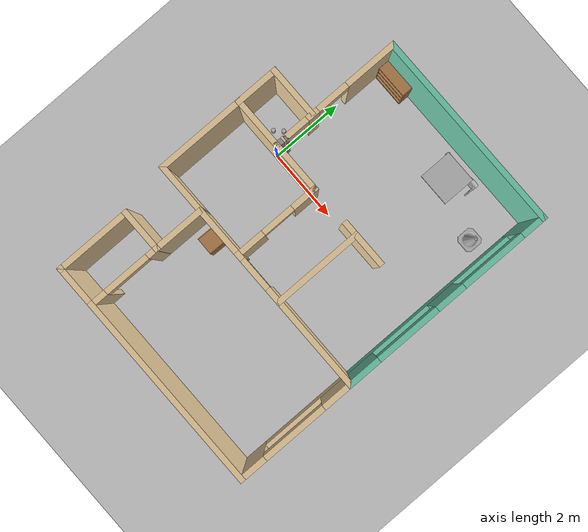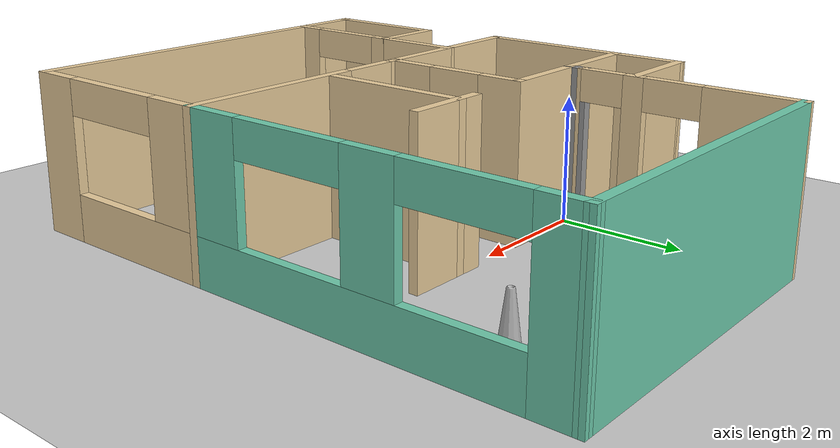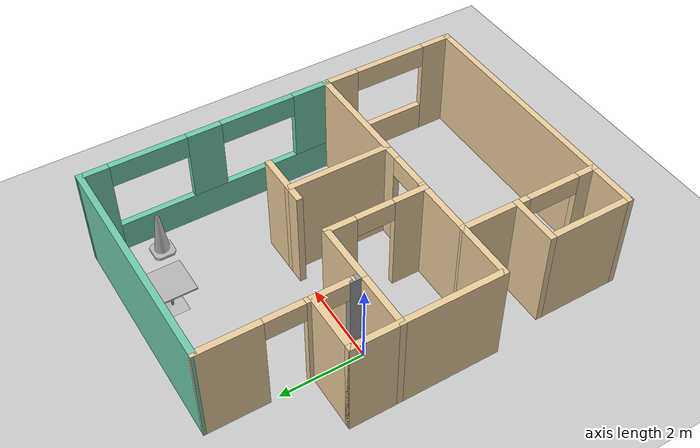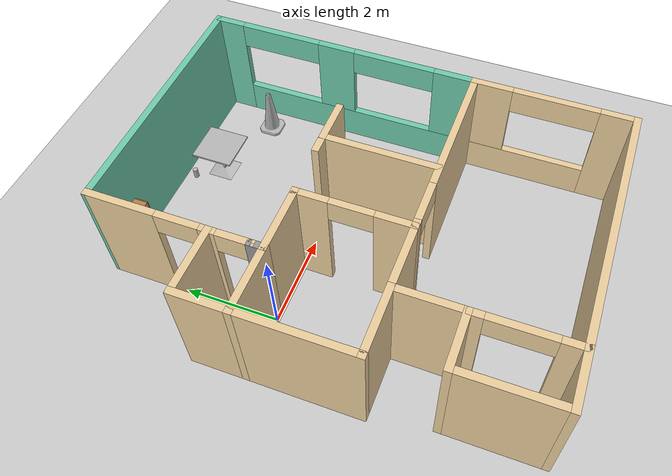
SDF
<sdf version="1.6">
 <world name="default">
  <model name="ground_plane">
   <static>1</static>
   <link name="link">
    <collision name="collision">
     <geometry><plane><normal>0 0 1</normal><size>100 100</size></plane></geometry>
     <surface>
      <contact><collide_bitmask>65535</collide_bitmask></contact>
      <friction><ode><mu>100</mu><mu2>50</mu2></ode></friction>
     </surface>
    </collision>
    <visual name="visual">
     <cast_shadows>0</cast_shadows>
     <geometry><plane><normal>0 0 1</normal><size>100 100</size></plane></geometry>
     <material>
      <script><uri>file://media/materials/scripts/gazebo.material</uri><name>Gazebo/Grey</name></script>
     </material>
    </visual>
   </link>
  </model>
  <model name="combined_model">
   <model name="apt_1br">
    <pose>0.440605 -1.37151 0 0 -0 0</pose>
    <link name="Wall_10">
     <collision name="Wall_10_Collision">
      <geometry><box><size>5.5 0.15 2.5</size></box></geometry>
      <pose>0 0 1.25 0 -0 0</pose>
     </collision>
     <visual name="Wall_10_Visual">
      <pose>0 0 1.25 0 -0 0</pose>
      <geometry><box><size>5.5 0.15 2.5</size></box></geometry>
      <material>
       <script><uri>file://media/materials/scripts/gazebo.material</uri><name>Gazebo/Grey</name></script>
       <ambient>0.921569 0.807843 0.615686 1</ambient>
      </material>
      <meta><layer>0</layer></meta>
     </visual>
     <pose>0.674919 -4.65002 0 0 -0 3.14159</pose>
    </link>
    <link name="Wall_21">
     <collision name="Wall_21_Collision">
      <geometry><box><size>1.5 0.15 2.5</size></box></geometry>
      <pose>0 0 1.25 0 -0 0</pose>
     </collision>
     <visual name="Wall_21_Visual">
      <pose>0 0 1.25 0 -0 0</pose>
      <geometry><box><size>1.5 0.15 2.5</size></box></geometry>
      <material>
       <script><uri>file://media/materials/scripts/gazebo.material</uri><name>Gazebo/Grey</name></script>
       <ambient>0.921569 0.807843 0.615686 1</ambient>
      </material>
      <meta><layer>0</layer></meta>
     </visual>
     <pose>-1.32508 1.04998 0 0 -0 3.14159</pose>
    </link>
    <link name="Wall_29">
     <pose>3.34992 1.67498 0 0 -0 -1.5708</pose>
     <visual name="Wall_29_Visual_0">
      <pose>-2.69448 0 1.25 0 -0 0</pose>
      <geometry><box><size>0.71105 0.15 2.5</size></box></geometry>
      <material>
       <script><uri>file://media/materials/scripts/gazebo.material</uri><name>Gazebo/Grey</name></script>
       <ambient>0.435294 0.796078 0.67451 1</ambient>
      </material>
      <meta><layer>0</layer></meta>
     </visual>
     <collision name="Wall_29_Collision_0">
      <geometry><box><size>0.71105 0.15 2.5</size></box></geometry>
      <pose>-2.69448 0 1.25 0 -0 0</pose>
     </collision>
     <visual name="Wall_29_Visual_1">
      <pose>0.355525 0 0.375 0 -0 0</pose>
      <geometry><box><size>5.38895 0.15 0.75</size></box></geometry>
      <material>
       <script><uri>file://media/materials/scripts/gazebo.material</uri><name>Gazebo/Grey</name></script>
       <ambient>0.435294 0.796078 0.67451 1</ambient>
      </material>
      <meta><layer>0</layer></meta>
     </visual>
     <collision name="Wall_29_Collision_1">
      <geometry><box><size>5.38895 0.15 0.75</size></box></geometry>
      <pose>0.355525 0 0.375 0 -0 0</pose>
     </collision>
     <visual name="Wall_29_Visual_2">
      <pose>-0.124805 0 1.625 0 -0 0</pose>
      <geometry><box><size>0.82829 0.15 1.75</size></box></geometry>
      <material>
       <script><uri>file://media/materials/scripts/gazebo.material</uri><name>Gazebo/Grey</name></script>
       <ambient>0.435294 0.796078 0.67451 1</ambient>
      </material>
      <meta><layer>0</layer></meta>
     </visual>
     <collision name="Wall_29_Collision_2">
      <geometry><box><size>0.82829 0.15 1.75</size></box></geometry>
      <pose>-0.124805 0 1.625 0 -0 0</pose>
     </collision>
     <visual name="Wall_29_Visual_3">
      <pose>2.56967 0 1.625 0 -0 0</pose>
      <geometry><box><size>0.96066 0.15 1.75</size></box></geometry>
      <material>
       <script><uri>file://media/materials/scripts/gazebo.material</uri><name>Gazebo/Grey</name></script>
       <ambient>0.435294 0.796078 0.67451 1</ambient>
      </material>
      <meta><layer>0</layer></meta>
     </visual>
     <collision name="Wall_29_Collision_3">
      <geometry><box><size>0.96066 0.15 1.75</size></box></geometry>
      <pose>2.56967 0 1.625 0 -0 0</pose>
     </collision>
     <visual name="Wall_29_Visual_4">
      <pose>-1.43895 0 2.225 0 -0 0</pose>
      <geometry><box><size>1.8 0.15 0.55</size></box></geometry>
      <material>
       <script><uri>file://media/materials/scripts/gazebo.material</uri><name>Gazebo/Grey</name></script>
       <ambient>0.435294 0.796078 0.67451 1</ambient>
      </material>
      <meta><layer>0</layer></meta>
     </visual>
     <collision name="Wall_29_Collision_4">
      <geometry><box><size>1.8 0.15 0.55</size></box></geometry>
      <pose>-1.43895 0 2.225 0 -0 0</pose>
     </collision>
     <visual name="Wall_29_Visual_5">
      <pose>1.18934 0 2.225 0 -0 0</pose>
      <geometry><box><size>1.8 0.15 0.55</size></box></geometry>
      <material>
       <script><uri>file://media/materials/scripts/gazebo.material</uri><name>Gazebo/Grey</name></script>
       <ambient>0.435294 0.796078 0.67451 1</ambient>
      </material>
      <meta><layer>0</layer></meta>
     </visual>
     <collision name="Wall_29_Collision_5">
      <geometry><box><size>1.8 0.15 0.55</size></box></geometry>
      <pose>1.18934 0 2.225 0 -0 0</pose>
     </collision>
    </link>
    <link name="Wall_31">
     <pose>3.34992 -2.97502 0 0 -0 1.5708</pose>
     <visual name="Wall_31_Visual_0">
      <pose>-1.34686 0 1.25 0 -0 0</pose>
      <geometry><box><size>0.806273 0.15 2.5</size></box></geometry>
      <material>
       <script><uri>file://media/materials/scripts/gazebo.material</uri><name>Gazebo/Grey</name></script>
       <ambient>0.921569 0.807843 0.615686 1</ambient>
      </material>
      <meta><layer>0</layer></meta>
     </visual>
     <collision name="Wall_31_Collision_0">
      <geometry><box><size>0.806273 0.15 2.5</size></box></geometry>
      <pose>-1.34686 0 1.25 0 -0 0</pose>
     </collision>
     <visual name="Wall_31_Visual_1">
      <pose>0.403136 0 0.375 0 -0 0</pose>
      <geometry><box><size>2.69373 0.15 0.75</size></box></geometry>
      <material>
       <script><uri>file://media/materials/scripts/gazebo.material</uri><name>Gazebo/Grey</name></script>
       <ambient>0.921569 0.807843 0.615686 1</ambient>
      </material>
      <meta><layer>0</layer></meta>
     </visual>
     <collision name="Wall_31_Collision_1">
      <geometry><box><size>2.69373 0.15 0.75</size></box></geometry>
      <pose>0.403136 0 0.375 0 -0 0</pose>
     </collision>
     <visual name="Wall_31_Visual_2">
      <pose>1.30314 0 1.625 0 -0 0</pose>
      <geometry><box><size>0.893727 0.15 1.75</size></box></geometry>
      <material>
       <script><uri>file://media/materials/scripts/gazebo.material</uri><name>Gazebo/Grey</name></script>
       <ambient>0.921569 0.807843 0.615686 1</ambient>
      </material>
      <meta><layer>0</layer></meta>
     </visual>
     <collision name="Wall_31_Collision_2">
      <geometry><box><size>0.893727 0.15 1.75</size></box></geometry>
      <pose>1.30314 0 1.625 0 -0 0</pose>
     </collision>
     <visual name="Wall_31_Visual_3">
      <pose>-0.043727 0 2.225 0 -0 0</pose>
      <geometry><box><size>1.8 0.15 0.55</size></box></geometry>
      <material>
       <script><uri>file://media/materials/scripts/gazebo.material</uri><name>Gazebo/Grey</name></script>
       <ambient>0.921569 0.807843 0.615686 1</ambient>
      </material>
      <meta><layer>0</layer></meta>
     </visual>
     <collision name="Wall_31_Collision_3">
      <geometry><box><size>1.8 0.15 0.55</size></box></geometry>
      <pose>-0.043727 0 2.225 0 -0 0</pose>
     </collision>
    </link>
    <link name="Wall_33">
     <pose>-0.650081 -0.125024 0 0 -0 -1.5708</pose>
     <visual name="Wall_33_Visual_0">
      <pose>-0.874194 0 1.25 0 -0 0</pose>
      <geometry><box><size>0.751611 0.15 2.5</size></box></geometry>
      <material>
       <script><uri>file://media/materials/scripts/gazebo.material</uri><name>Gazebo/Grey</name></script>
       <ambient>0.921569 0.807843 0.615686 1</ambient>
      </material>
      <meta><layer>0</layer></meta>
     </visual>
     <collision name="Wall_33_Collision_0">
      <geometry><box><size>0.751611 0.15 2.5</size></box></geometry>
      <pose>-0.874194 0 1.25 0 -0 0</pose>
     </collision>
     <visual name="Wall_33_Visual_1">
      <pose>0.825806 0 1.25 0 -0 0</pose>
      <geometry><box><size>0.848389 0.15 2.5</size></box></geometry>
      <material>
       <script><uri>file://media/materials/scripts/gazebo.material</uri><name>Gazebo/Grey</name></script>
       <ambient>0.921569 0.807843 0.615686 1</ambient>
      </material>
      <meta><layer>0</layer></meta>
     </visual>
     <collision name="Wall_33_Collision_1">
      <geometry><box><size>0.848389 0.15 2.5</size></box></geometry>
      <pose>0.825806 0 1.25 0 -0 0</pose>
     </collision>
     <visual name="Wall_33_Visual_2">
      <pose>-0.048389 0 2.25 0 -0 0</pose>
      <geometry><box><size>0.9 0.15 0.5</size></box></geometry>
      <material>
       <script><uri>file://media/materials/scripts/gazebo.material</uri><name>Gazebo/Grey</name></script>
       <ambient>0.921569 0.807843 0.615686 1</ambient>
      </material>
      <meta><layer>0</layer></meta>
     </visual>
     <collision name="Wall_33_Collision_2">
      <geometry><box><size>0.9 0.15 0.5</size></box></geometry>
      <pose>-0.048389 0 2.25 0 -0 0</pose>
     </collision>
    </link>
    <link name="Wall_34">
     <collision name="Wall_34_Collision">
      <geometry><box><size>1.5 0.15 2.5</size></box></geometry>
      <pose>0 0 1.25 0 -0 0</pose>
     </collision>
     <visual name="Wall_34_Visual">
      <pose>0 0 1.25 0 -0 0</pose>
      <geometry><box><size>1.5 0.15 2.5</size></box></geometry>
      <material>
       <script><uri>file://media/materials/scripts/gazebo.material</uri><name>Gazebo/Grey</name></script>
       <ambient>0.921569 0.807843 0.615686 1</ambient>
      </material>
      <meta><layer>0</layer></meta>
     </visual>
     <pose>-1.32508 -1.30002 0 0 -0 3.14159</pose>
    </link>
    <link name="Wall_36">
     <pose>1.34992 -1.30002 0 0 -0 0</pose>
     <visual name="Wall_36_Visual_0">
      <pose>-1.96133 0 1.25 0 -0 0</pose>
      <geometry><box><size>0.227341 0.15 2.5</size></box></geometry>
      <material>
       <script><uri>file://media/materials/scripts/gazebo.material</uri><name>Gazebo/Grey</name></script>
       <ambient>0.921569 0.807843 0.615686 1</ambient>
      </material>
      <meta><layer>0</layer></meta>
     </visual>
     <collision name="Wall_36_Collision_0">
      <geometry><box><size>0.227341 0.15 2.5</size></box></geometry>
      <pose>-1.96133 0 1.25 0 -0 0</pose>
     </collision>
     <visual name="Wall_36_Visual_1">
      <pose>0.56367 0 1.25 0 -0 0</pose>
      <geometry><box><size>3.02266 0.15 2.5</size></box></geometry>
      <material>
       <script><uri>file://media/materials/scripts/gazebo.material</uri><name>Gazebo/Grey</name></script>
       <ambient>0.921569 0.807843 0.615686 1</ambient>
      </material>
      <meta><layer>0</layer></meta>
     </visual>
     <collision name="Wall_36_Collision_1">
      <geometry><box><size>3.02266 0.15 2.5</size></box></geometry>
      <pose>0.56367 0 1.25 0 -0 0</pose>
     </collision>
     <visual name="Wall_36_Visual_2">
      <pose>-1.39766 0 2.25 0 -0 0</pose>
      <geometry><box><size>0.9 0.15 0.5</size></box></geometry>
      <material>
       <script><uri>file://media/materials/scripts/gazebo.material</uri><name>Gazebo/Grey</name></script>
       <ambient>0.921569 0.807843 0.615686 1</ambient>
      </material>
      <meta><layer>0</layer></meta>
     </visual>
     <collision name="Wall_36_Collision_2">
      <geometry><box><size>0.9 0.15 0.5</size></box></geometry>
      <pose>-1.39766 0 2.25 0 -0 0</pose>
     </collision>
    </link>
    <link name="Wall_38">
     <collision name="Wall_38_Collision">
      <geometry><box><size>2.5 0.15 2.5</size></box></geometry>
      <pose>0 0 1.25 0 -0 0</pose>
     </collision>
     <visual name="Wall_38_Visual">
      <pose>0 0 1.25 0 -0 0</pose>
      <geometry><box><size>2.5 0.15 2.5</size></box></geometry>
      <material>
       <script><uri>file://media/materials/scripts/gazebo.material</uri><name>Gazebo/Grey</name></script>
       <ambient>0.921569 0.807843 0.615686 1</ambient>
      </material>
      <meta><layer>0</layer></meta>
     </visual>
     <pose>0.806186 -0.096149 0 0 -0 1.5708</pose>
    </link>
    <link name="Wall_41">
     <collision name="Wall_41_Collision">
      <geometry><box><size>1 0.15 2.5</size></box></geometry>
      <pose>0 0 1.25 0 -0 0</pose>
     </collision>
     <visual name="Wall_41_Visual">
      <pose>0 0 1.25 0 -0 0</pose>
      <geometry><box><size>1 0.15 2.5</size></box></geometry>
      <material>
       <script><uri>file://media/materials/scripts/gazebo.material</uri><name>Gazebo/Grey</name></script>
       <ambient>0.921569 0.807843 0.615686 1</ambient>
      </material>
      <meta><layer>0</layer></meta>
     </visual>
     <pose>1.23119 1.07885 0 0 -0 0</pose>
    </link>
    <link name="Wall_43">
     <collision name="Wall_43_Collision">
      <geometry><box><size>0.5 0.15 2.5</size></box></geometry>
      <pose>0 0 1.25 0 -0 0</pose>
     </collision>
     <visual name="Wall_43_Visual">
      <pose>0 0 1.25 0 -0 0</pose>
      <geometry><box><size>0.5 0.15 2.5</size></box></geometry>
      <material>
       <script><uri>file://media/materials/scripts/gazebo.material</uri><name>Gazebo/Grey</name></script>
       <ambient>0.921569 0.807843 0.615686 1</ambient>
      </material>
      <meta><layer>0</layer></meta>
     </visual>
     <pose>0.631186 1.07885 0 0 -0 3.14159</pose>
    </link>
    <link name="Wall_5">
     <pose>-2.00008 2.96898 0 0 -0 1.5708</pose>
     <visual name="Wall_5_Visual_0">
      <pose>-1.71167 0 1.25 0 -0 0</pose>
      <geometry><box><size>0.064664 0.15 2.5</size></box></geometry>
      <material>
       <script><uri>file://media/materials/scripts/gazebo.material</uri><name>Gazebo/Grey</name></script>
       <ambient>0.921569 0.807843 0.615686 1</ambient>
      </material>
      <meta><layer>0</layer></meta>
     </visual>
     <collision name="Wall_5_Collision_0">
      <geometry><box><size>0.064664 0.15 2.5</size></box></geometry>
      <pose>-1.71167 0 1.25 0 -0 0</pose>
     </collision>
     <visual name="Wall_5_Visual_1">
      <pose>-0.81386 0 1.25 0 -0 0</pose>
      <geometry><box><size>0.330951 0.15 2.5</size></box></geometry>
      <material>
       <script><uri>file://media/materials/scripts/gazebo.material</uri><name>Gazebo/Grey</name></script>
       <ambient>0.921569 0.807843 0.615686 1</ambient>
      </material>
      <meta><layer>0</layer></meta>
     </visual>
     <collision name="Wall_5_Collision_1">
      <geometry><box><size>0.330951 0.15 2.5</size></box></geometry>
      <pose>-0.81386 0 1.25 0 -0 0</pose>
     </collision>
     <visual name="Wall_5_Visual_2">
      <pose>0.997808 0 1.25 0 -0 0</pose>
      <geometry><box><size>1.49239 0.15 2.5</size></box></geometry>
      <material>
       <script><uri>file://media/materials/scripts/gazebo.material</uri><name>Gazebo/Grey</name></script>
       <ambient>0.921569 0.807843 0.615686 1</ambient>
      </material>
      <meta><layer>0</layer></meta>
     </visual>
     <collision name="Wall_5_Collision_2">
      <geometry><box><size>1.49239 0.15 2.5</size></box></geometry>
      <pose>0.997808 0 1.25 0 -0 0</pose>
     </collision>
     <visual name="Wall_5_Visual_3">
      <pose>-1.32934 0 2.25 0 -0 0</pose>
      <geometry><box><size>0.7 0.15 0.5</size></box></geometry>
      <material>
       <script><uri>file://media/materials/scripts/gazebo.material</uri><name>Gazebo/Grey</name></script>
       <ambient>0.921569 0.807843 0.615686 1</ambient>
      </material>
      <meta><layer>0</layer></meta>
     </visual>
     <collision name="Wall_5_Collision_3">
      <geometry><box><size>0.7 0.15 0.5</size></box></geometry>
      <pose>-1.32934 0 2.25 0 -0 0</pose>
     </collision>
     <visual name="Wall_5_Visual_4">
      <pose>-0.198385 0 2.25 0 -0 0</pose>
      <geometry><box><size>0.9 0.15 0.5</size></box></geometry>
      <material>
       <script><uri>file://media/materials/scripts/gazebo.material</uri><name>Gazebo/Grey</name></script>
       <ambient>0.921569 0.807843 0.615686 1</ambient>
      </material>
      <meta><layer>0</layer></meta>
     </visual>
     <collision name="Wall_5_Collision_4">
      <geometry><box><size>0.9 0.15 0.5</size></box></geometry>
      <pose>-0.198385 0 2.25 0 -0 0</pose>
     </collision>
    </link>
    <link name="Wall_54">
     <collision name="Wall_54_Collision">
      <geometry><box><size>1.5 0.15 2.5</size></box></geometry>
      <pose>0 0 1.25 0 -0 0</pose>
     </collision>
     <visual name="Wall_54_Visual">
      <pose>0 0 1.25 0 -0 0</pose>
      <geometry><box><size>1.5 0.15 2.5</size></box></geometry>
      <material>
       <script><uri>file://media/materials/scripts/gazebo.material</uri><name>Gazebo/Grey</name></script>
       <ambient>0.921569 0.807843 0.615686 1</ambient>
      </material>
      <meta><layer>0</layer></meta>
     </visual>
     <pose>-2.67508 1.04998 0 0 -0 3.14159</pose>
    </link>
    <link name="Wall_55">
     <collision name="Wall_55_Collision">
      <geometry><box><size>2.5 0.15 2.5</size></box></geometry>
      <pose>0 0 1.25 0 -0 0</pose>
     </collision>
     <visual name="Wall_55_Visual">
      <pose>0 0 1.25 0 -0 0</pose>
      <geometry><box><size>2.5 0.15 2.5</size></box></geometry>
      <material>
       <script><uri>file://media/materials/scripts/gazebo.material</uri><name>Gazebo/Grey</name></script>
       <ambient>0.921569 0.807843 0.615686 1</ambient>
      </material>
      <meta><layer>0</layer></meta>
     </visual>
     <pose>-3.35008 -0.125024 0 0 -0 -1.5708</pose>
    </link>
    <link name="Wall_56">
     <collision name="Wall_56_Collision">
      <geometry><box><size>1.5 0.15 2.5</size></box></geometry>
      <pose>0 0 1.25 0 -0 0</pose>
     </collision>
     <visual name="Wall_56_Visual">
      <pose>0 0 1.25 0 -0 0</pose>
      <geometry><box><size>1.5 0.15 2.5</size></box></geometry>
      <material>
       <script><uri>file://media/materials/scripts/gazebo.material</uri><name>Gazebo/Grey</name></script>
       <ambient>0.921569 0.807843 0.615686 1</ambient>
      </material>
      <meta><layer>0</layer></meta>
     </visual>
     <pose>-2.67508 -1.30002 0 0 -0 0</pose>
    </link>
    <link name="Wall_57">
     <collision name="Wall_57_Collision">
      <geometry><box><size>1.5 0.15 2.5</size></box></geometry>
      <pose>0 0 1.25 0 -0 0</pose>
     </collision>
     <visual name="Wall_57_Visual">
      <pose>0 0 1.25 0 -0 0</pose>
      <geometry><box><size>1.5 0.15 2.5</size></box></geometry>
      <material>
       <script><uri>file://media/materials/scripts/gazebo.material</uri><name>Gazebo/Grey</name></script>
       <ambient>0.921569 0.807843 0.615686 1</ambient>
      </material>
      <meta><layer>0</layer></meta>
     </visual>
     <pose>-2.0017 -1.97502 0 0 -0 -1.57319</pose>
    </link>
    <link name="Wall_58">
     <collision name="Wall_58_Collision">
      <geometry><box><size>1.247 0.15 2.5</size></box></geometry>
      <pose>0 0 1.25 0 -0 0</pose>
     </collision>
     <visual name="Wall_58_Visual">
      <pose>0 0 1.25 0 -0 0</pose>
      <geometry><box><size>1.247 0.15 2.5</size></box></geometry>
      <material>
       <script><uri>file://media/materials/scripts/gazebo.material</uri><name>Gazebo/Grey</name></script>
       <ambient>0.921569 0.807843 0.615686 1</ambient>
      </material>
      <meta><layer>0</layer></meta>
     </visual>
     <pose>-2.55181 -2.65002 0 0 -0 3.14159</pose>
    </link>
    <link name="Wall_6">
     <collision name="Wall_6_Collision">
      <geometry><box><size>5.5 0.15 2.5</size></box></geometry>
      <pose>0 0 1.25 0 -0 0</pose>
     </collision>
     <visual name="Wall_6_Visual">
      <pose>0 0 1.25 0 -0 0</pose>
      <geometry><box><size>5.5 0.15 2.5</size></box></geometry>
      <material>
       <script><uri>file://media/materials/scripts/gazebo.material</uri><name>Gazebo/Grey</name></script>
       <ambient>0.435294 0.796078 0.67451 1</ambient>
      </material>
      <meta><layer>0</layer></meta>
     </visual>
     <pose>0.674919 4.64398 0 0 -0 0.002243</pose>
    </link>
    <link name="Wall_62">
     <collision name="Wall_62_Collision">
      <geometry><box><size>1.25 0.15 2.5</size></box></geometry>
      <pose>0 0 1.25 0 -0 0</pose>
     </collision>
     <visual name="Wall_62_Visual">
      <pose>0 0 1.25 0 -0 0</pose>
      <geometry><box><size>1.25 0.15 2.5</size></box></geometry>
      <material>
       <script><uri>file://media/materials/scripts/gazebo.material</uri><name>Gazebo/Grey</name></script>
       <ambient>0.921569 0.807843 0.615686 1</ambient>
      </material>
      <meta><layer>0</layer></meta>
     </visual>
     <pose>-2.55008 -4.65002 0 0 -0 3.14159</pose>
    </link>
    <link name="Wall_63">
     <collision name="Wall_63_Collision">
      <geometry><box><size>2 0.15 2.5</size></box></geometry>
      <pose>0 0 1.25 0 -0 0</pose>
     </collision>
     <visual name="Wall_63_Visual">
      <pose>0 0 1.25 0 -0 0</pose>
      <geometry><box><size>2 0.15 2.5</size></box></geometry>
      <material>
       <script><uri>file://media/materials/scripts/gazebo.material</uri><name>Gazebo/Grey</name></script>
       <ambient>0.921569 0.807843 0.615686 1</ambient>
      </material>
      <meta><layer>0</layer></meta>
     </visual>
     <pose>-3.10008 -3.72502 0 0 -0 1.5708</pose>
    </link>
    <link name="Wall_65">
     <pose>-2.0017 -3.65002 0 0 -0 -1.56918</pose>
     <visual name="Wall_65_Visual_0">
      <pose>-0.895757 0 1.25 0 -0 0</pose>
      <geometry><box><size>0.358489 0.15 2.5</size></box></geometry>
      <material>
       <script><uri>file://media/materials/scripts/gazebo.material</uri><name>Gazebo/Grey</name></script>
       <ambient>0.921569 0.807843 0.615686 1</ambient>
      </material>
      <meta><layer>0</layer></meta>
     </visual>
     <collision name="Wall_65_Collision_0">
      <geometry><box><size>0.358489 0.15 2.5</size></box></geometry>
      <pose>-0.895757 0 1.25 0 -0 0</pose>
     </collision>
     <visual name="Wall_65_Visual_1">
      <pose>0.815925 0 1.25 0 -0 0</pose>
      <geometry><box><size>0.518152 0.15 2.5</size></box></geometry>
      <material>
       <script><uri>file://media/materials/scripts/gazebo.material</uri><name>Gazebo/Grey</name></script>
       <ambient>0.921569 0.807843 0.615686 1</ambient>
      </material>
      <meta><layer>0</layer></meta>
     </visual>
     <collision name="Wall_65_Collision_1">
      <geometry><box><size>0.518152 0.15 2.5</size></box></geometry>
      <pose>0.815925 0 1.25 0 -0 0</pose>
     </collision>
     <visual name="Wall_65_Visual_2">
      <pose>-0.079832 0 2.25 0 -0 0</pose>
      <geometry><box><size>1.27336 0.15 0.5</size></box></geometry>
      <material>
       <script><uri>file://media/materials/scripts/gazebo.material</uri><name>Gazebo/Grey</name></script>
       <ambient>0.921569 0.807843 0.615686 1</ambient>
      </material>
      <meta><layer>0</layer></meta>
     </visual>
     <collision name="Wall_65_Collision_2">
      <geometry><box><size>1.27336 0.15 0.5</size></box></geometry>
      <pose>-0.079832 0 2.25 0 -0 0</pose>
     </collision>
    </link>
    <link name="Wall_70">
     <collision name="Wall_70_Collision">
      <geometry><box><size>1.25 0.15 2.5</size></box></geometry>
      <pose>0 0 1.25 0 -0 0</pose>
     </collision>
     <visual name="Wall_70_Visual">
      <pose>0 0 1.25 0 -0 0</pose>
      <geometry><box><size>1.25 0.15 2.5</size></box></geometry>
      <material>
       <script><uri>file://media/materials/scripts/gazebo.material</uri><name>Gazebo/Grey</name></script>
       <ambient>0.921569 0.807843 0.615686 1</ambient>
      </material>
      <meta><layer>0</layer></meta>
     </visual>
     <pose>-3.35008 1.59998 0 0 -0 1.5708</pose>
    </link>
    <link name="Wall_71">
     <collision name="Wall_71_Collision">
      <geometry><box><size>1.5 0.15 2.5</size></box></geometry>
      <pose>0 0 1.25 0 -0 0</pose>
     </collision>
     <visual name="Wall_71_Visual">
      <pose>0 0 1.25 0 -0 0</pose>
      <geometry><box><size>1.5 0.15 2.5</size></box></geometry>
      <material>
       <script><uri>file://media/materials/scripts/gazebo.material</uri><name>Gazebo/Grey</name></script>
       <ambient>0.921569 0.807843 0.615686 1</ambient>
      </material>
      <meta><layer>0</layer></meta>
     </visual>
     <pose>-2.67508 2.14998 0 0 -0 0</pose>
    </link>
    <link name="Wall_73">
     <collision name="Wall_73_Collision">
      <geometry><box><size>0.4 0.15 2.5</size></box></geometry>
      <pose>0 0 1.25 0 -0 0</pose>
     </collision>
     <visual name="Wall_73_Visual">
      <pose>0 0 1.25 0 -0 0</pose>
      <geometry><box><size>0.4 0.15 2.5</size></box></geometry>
      <material>
       <script><uri>file://media/materials/scripts/gazebo.material</uri><name>Gazebo/Grey</name></script>
       <ambient>1 1 1 1</ambient>
      </material>
      <meta><layer>0</layer></meta>
     </visual>
     <pose>-2.00008 1.17498 0 0 -0 1.5708</pose>
    </link>
    <static>1</static>
   </model>
   <model name="bookshelf">
    <static>1</static>
    <link name="link">
     <inertial><mass>1</mass></inertial>
     <collision name="back">
      <pose>0 0.005 0.6 0 -0 0</pose>
      <geometry><box><size>0.9 0.01 1.2</size></box></geometry>
     </collision>
     <visual name="visual1">
      <pose>0 0.005 0.6 0 -0 0</pose>
      <geometry><box><size>0.9 0.01 1.2</size></box></geometry>
      <material>
       <script><uri>file://media/materials/scripts/gazebo.material</uri><name>Gazebo/Wood</name></script>
      </material>
     </visual>
     <collision name="left_side">
      <pose>0.45 -0.195 0.6 0 -0 0</pose>
      <geometry><box><size>0.02 0.4 1.2</size></box></geometry>
     </collision>
     <visual name="visual2">
      <pose>0.45 -0.195 0.6 0 -0 0</pose>
      <geometry><box><size>0.02 0.4 1.2</size></box></geometry>
      <material>
       <script><uri>file://media/materials/scripts/gazebo.material</uri><name>Gazebo/Wood</name></script>
      </material>
     </visual>
     <collision name="right_side">
      <pose>-0.45 -0.195 0.6 0 -0 0</pose>
      <geometry><box><size>0.02 0.4 1.2</size></box></geometry>
     </collision>
     <visual name="visual3">
      <pose>-0.45 -0.195 0.6 0 -0 0</pose>
      <geometry><box><size>0.02 0.4 1.2</size></box></geometry>
      <material>
       <script><uri>file://media/materials/scripts/gazebo.material</uri><name>Gazebo/Wood</name></script>
      </material>
     </visual>
     <collision name="bottom">
      <pose>0 -0.195 0.03 0 -0 0</pose>
      <geometry><box><size>0.88 0.4 0.06</size></box></geometry>
     </collision>
     <visual name="visual4">
      <pose>0 -0.195 0.03 0 -0 0</pose>
      <geometry><box><size>0.88 0.4 0.06</size></box></geometry>
      <material>
       <script><uri>file://media/materials/scripts/gazebo.material</uri><name>Gazebo/Wood</name></script>
      </material>
     </visual>
     <collision name="top">
      <pose>0 -0.195 1.19 0 -0 0</pose>
      <geometry><box><size>0.88 0.4 0.02</size></box></geometry>
     </collision>
     <visual name="visual5">
      <pose>0 -0.195 1.19 0 -0 0</pose>
      <geometry><box><size>0.88 0.4 0.02</size></box></geometry>
      <material>
       <script><uri>file://media/materials/scripts/gazebo.material</uri><name>Gazebo/Wood</name></script>
      </material>
     </visual>
     <collision name="low_shelf">
      <pose>0 -0.195 0.43 0 -0 0</pose>
      <geometry><box><size>0.88 0.4 0.02</size></box></geometry>
     </collision>
     <visual name="visual6">
      <pose>0 -0.195 0.43 0 -0 0</pose>
      <geometry><box><size>0.88 0.4 0.02</size></box></geometry>
      <material>
       <script><uri>file://media/materials/scripts/gazebo.material</uri><name>Gazebo/Wood</name></script>
      </material>
     </visual>
     <collision name="high_shelf">
      <pose>0 -0.195 0.8 0 -0 0</pose>
      <geometry><box><size>0.88 0.4 0.02</size></box></geometry>
     </collision>
     <visual name="visual7">
      <pose>0 -0.195 0.8 0 -0 0</pose>
      <geometry><box><size>0.88 0.4 0.02</size></box></geometry>
      <material>
       <script><uri>file://media/materials/scripts/gazebo.material</uri><name>Gazebo/Wood</name></script>
      </material>
     </visual>
    </link>
    <pose>-1.04171 3.29108 0 0 -0 0</pose>
   </model>
   <model name="cabinet">
    <static>1</static>
    <link name="cabinet_bottom_plate">
     <inertial>
      <pose>0 0 -1 0 -0 0</pose>
      <inertia><ixx>2.05</ixx><ixy>0</ixy><ixz>0</ixz><iyy>2.05</iyy><iyz>0</iyz><izz>2.05</izz></inertia>
      <mass>25</mass>
     </inertial>
     <collision name="cabinet_bottom_plate_geom">
      <pose>0 0 0.01 0 -0 0</pose>
      <geometry><box><size>0.45 0.45 0.02</size></box></geometry>
     </collision>
     <visual name="cabinet_bottom_plate_geom_visual">
      <pose>0 0 0.01 0 -0 0</pose>
      <geometry><box><size>0.45 0.45 0.02</size></box></geometry>
      <material>
       <script><uri>file://media/materials/scripts/gazebo.material</uri><name>Gazebo/Wood</name></script>
      </material>
     </visual>
     <collision name="cabinet_bottom_plate_geom_cabinet_back_plate">
      <pose>0.235 0 0.51 0 -0 0</pose>
      <geometry><box><size>0.02 0.45 1.02</size></box></geometry>
     </collision>
     <visual name="cabinet_bottom_plate_geom_cabinet_back_plate_visual">
      <pose>0.235 0 0.51 0 -0 0</pose>
      <geometry><box><size>0.02 0.45 1.02</size></box></geometry>
      <material>
       <script><uri>file://media/materials/scripts/gazebo.material</uri><name>Gazebo/Wood</name></script>
      </material>
     </visual>
     <collision name="cabinet_bottom_plate_geom_cabinet_left_plate">
      <pose>0 0.235 0.51 0 -0 0</pose>
      <geometry><box><size>0.45 0.02 1.02</size></box></geometry>
     </collision>
     <visual name="cabinet_bottom_plate_geom_cabinet_left_plate_visual">
      <pose>0 0.235 0.51 0 -0 0</pose>
      <geometry><box><size>0.45 0.02 1.02</size></box></geometry>
      <material>
       <script><uri>file://media/materials/scripts/gazebo.material</uri><name>Gazebo/Wood</name></script>
      </material>
     </visual>
     <collision name="cabinet_bottom_plate_geom_cabinet_middle_plate">
      <pose>0 0 0.51 0 -0 0</pose>
      <geometry><box><size>0.45 0.45 0.02</size></box></geometry>
     </collision>
     <visual name="cabinet_bottom_plate_geom_cabinet_middle_plate_visual">
      <pose>0 0 0.51 0 -0 0</pose>
      <geometry><box><size>0.45 0.45 0.02</size></box></geometry>
      <material>
       <script><uri>file://media/materials/scripts/gazebo.material</uri><name>Gazebo/Wood</name></script>
      </material>
     </visual>
     <collision name="cabinet_bottom_plate_geom_cabinet_right_plate">
      <pose>0 -0.235 0.51 0 -0 0</pose>
      <geometry><box><size>0.45 0.02 1.02</size></box></geometry>
     </collision>
     <visual name="cabinet_bottom_plate_geom_cabinet_right_plate_visual">
      <pose>0 -0.235 0.51 0 -0 0</pose>
      <geometry><box><size>0.45 0.02 1.02</size></box></geometry>
      <material>
       <script><uri>file://media/materials/scripts/gazebo.material</uri><name>Gazebo/Wood</name></script>
      </material>
     </visual>
     <collision name="cabinet_bottom_plate_geom_cabinet_top_plate">
      <pose>0 0 1.01 0 -0 0</pose>
      <geometry><box><size>0.45 0.45 0.02</size></box></geometry>
     </collision>
     <visual name="cabinet_bottom_plate_geom_cabinet_top_plate_visual">
      <pose>0 0 1.01 0 -0 0</pose>
      <geometry><box><size>0.45 0.45 0.02</size></box></geometry>
      <material>
       <script><uri>file://media/materials/scripts/gazebo.material</uri><name>Gazebo/Wood</name></script>
      </material>
     </visual>
    </link>
    <pose>-0.989306 -2.99197 0 0 -0 1.55199</pose>
   </model>
   <model name="cafe_table">
    <static>1</static>
    <link name="link">
     <collision name="surface">
      <pose>0 0 0.755 0 -0 0</pose>
      <geometry><box><size>0.913 0.913 0.04</size></box></geometry>
     </collision>
     <collision name="column">
      <pose>0 0 0.37 0 -0 0</pose>
      <geometry><box><size>0.042 0.042 0.74</size></box></geometry>
     </collision>
     <collision name="base">
      <pose>0 0 0.02 0 -0 0</pose>
      <geometry><box><size>0.56 0.56 0.04</size></box></geometry>
     </collision>
     <visual name="visual">
      <geometry><mesh><uri>model://cafe_table/meshes/cafe_table.dae</uri></mesh></geometry>
     </visual>
    </link>
    <pose>1.64758 2.46156 0 0 -0 0</pose>
   </model>
   <static>0</static>
   <pose>1.60223 0.339537 0 0 -0 0</pose>
  </model>
  <model name="Construction Cone">
   <link name="link">
    <collision name="collision">
     <geometry>
      <mesh><scale>10 10 10</scale><uri>model://construction_cone/meshes/construction_cone.dae</uri></mesh>
     </geometry>
    </collision>
    <visual name="visual">
     <geometry>
      <mesh><scale>10 10 10</scale><uri>model://construction_cone/meshes/construction_cone.dae</uri></mesh>
     </geometry>
    </visual>
    <inertial>
     <inertia><ixx>1</ixx><ixy>0</ixy><ixz>0</ixz><iyy>1</iyy><iyz>0</iyz><izz>1</izz></inertia>
     <mass>1</mass>
    </inertial>
   </link>
   <pose>4.82924 2.31813 -0 0 -0 0</pose>
  </model>
  <model name="beer">
   <link name="link">
    <pose>0 0 0.115 0 -0 0</pose>
    <inertial>
     <mass>0.39</mass>
     <inertia><ixx>0.00058</ixx><ixy>0</ixy><ixz>0</ixz><iyy>0.00058</iyy><iyz>0</iyz><izz>0.00019</izz></inertia>
    </inertial>
    <collision name="collision">
     <geometry><cylinder><radius>0.055</radius><length>0.23</length></cylinder></geometry>
    </collision>
    <visual name="visual">
     <geometry><cylinder><radius>0.055</radius><length>0.23</length></cylinder></geometry>
     <material>
      <script>
       <uri>model://beer/materials/scripts</uri>
       <uri>model://beer/materials/textures</uri>
       <name>Beer/Diffuse</name>
      </script>
     </material>
    </visual>
   </link>
   <pose>-0.555134 0.348311 -7e-06 -1e-06 -0 -2.9e-05</pose>
  </model>
  <model name="beer_0">
   <link name="link">
    <pose>0 0 0.115 0 -0 0</pose>
    <inertial>
     <mass>0.39</mass>
     <inertia><ixx>0.00058</ixx><ixy>0</ixy><ixz>0</ixz><iyy>0.00058</iyy><iyz>0</iyz><izz>0.00019</izz></inertia>
    </inertial>
    <collision name="collision">
     <geometry><cylinder><radius>0.055</radius><length>0.23</length></cylinder></geometry>
    </collision>
    <visual name="visual">
     <geometry><cylinder><radius>0.055</radius><length>0.23</length></cylinder></geometry>
     <material>
      <script>
       <uri>model://beer/materials/scripts</uri>
       <uri>model://beer/materials/textures</uri>
       <name>Beer/Diffuse</name>
      </script>
     </material>
    </visual>
   </link>
   <pose>-0.363883 0.537667 -2e-06 1e-06 0 -2.8e-05</pose>
  </model>
  <model name="beer_1">
   <link name="link">
    <pose>0 0 0.115 0 -0 0</pose>
    <inertial>
     <mass>0.39</mass>
     <inertia><ixx>0.00058</ixx><ixy>0</ixy><ixz>0</ixz><iyy>0.00058</iyy><iyz>0</iyz><izz>0.00019</izz></inertia>
    </inertial>
    <collision name="collision">
     <geometry><cylinder><radius>0.055</radius><length>0.23</length></cylinder></geometry>
    </collision>
    <visual name="visual">
     <geometry><cylinder><radius>0.055</radius><length>0.23</length></cylinder></geometry>
     <material>
      <script>
       <uri>model://beer/materials/scripts</uri>
       <uri>model://beer/materials/textures</uri>
       <name>Beer/Diffuse</name>
      </script>
     </material>
    </visual>
   </link>
   <pose>2.8159 3.31488 -7e-06 -1e-06 -0 -1.4e-05</pose>
  </model>
  <model name="arm_part">
   <link name="link">
    <inertial>
     <pose>0 -0.12223 0.101835 0 -0 0</pose>
     <mass>0.5</mass>
     <inertia>
      <ixx>0.00950655</ixx>
      <ixy>0</ixy>
      <ixz>0</ixz>
      <iyy>0.00543452</iyy>
      <iyz>0</iyz>
      <izz>0.0114843</izz>
     </inertia>
    </inertial>
    <collision name="collision">
     <pose>0 -0.12223 0.101835 0 -0 0</pose>
     <geometry><box><size>0.29824 0.43206 0.20367</size></box></geometry>
    </collision>
    <visual name="visual">
     <geometry><mesh><uri>model://arm_part/meshes/arm.dae</uri></mesh></geometry>
     <material>
      <script>
       <uri>model://arm_part/materials/scripts</uri>
       <uri>model://arm_part/materials/textures</uri>
       <name>ArmPart/Diffuse</name>
      </script>
     </material>
    </visual>
   </link>
   <pose>3.77472 3.30625 -0 0 -0 0.002253</pose>
  </model>
 </world>
</sdf>
